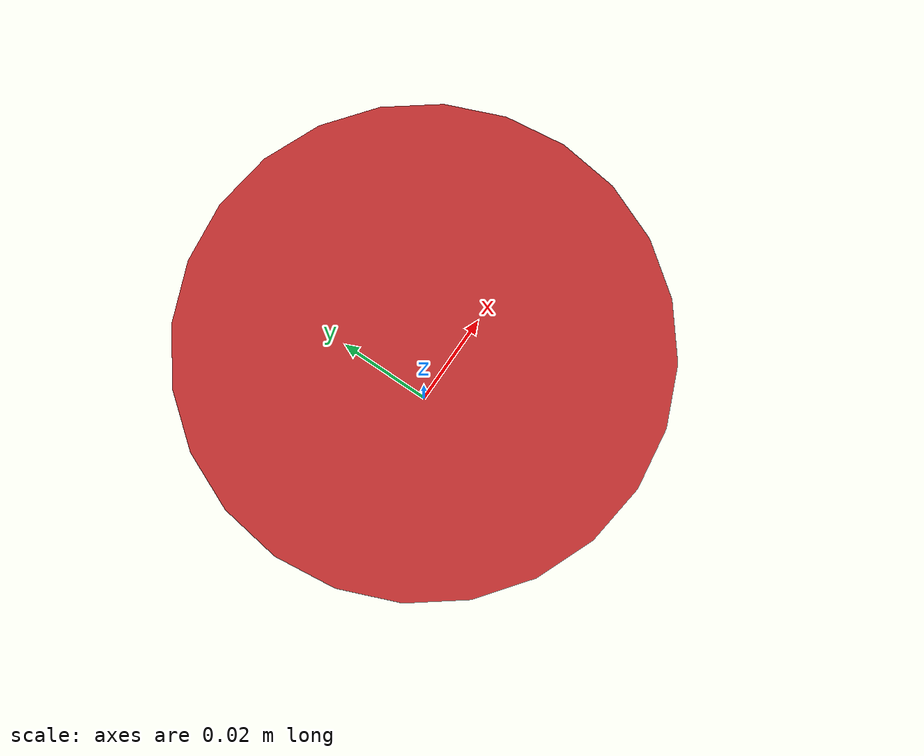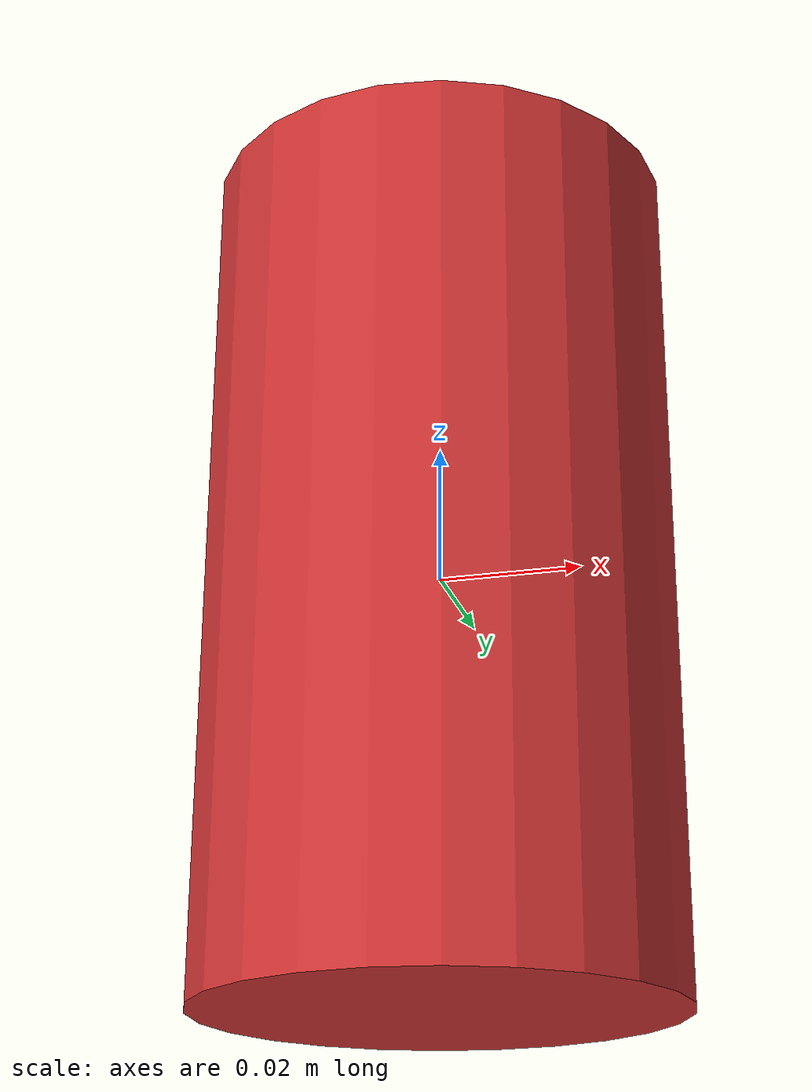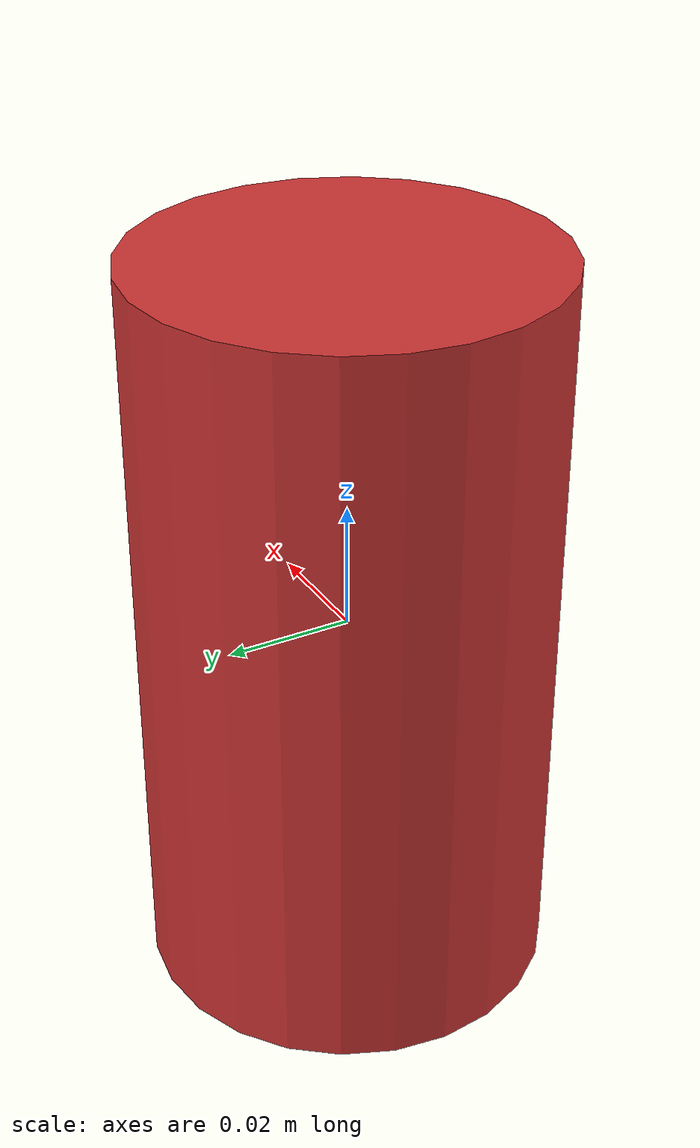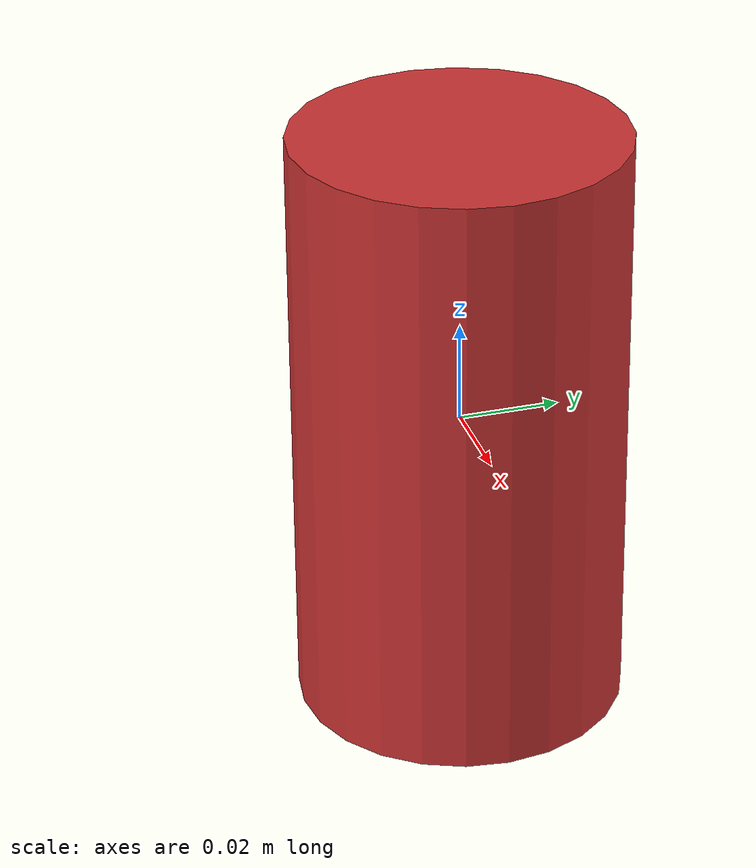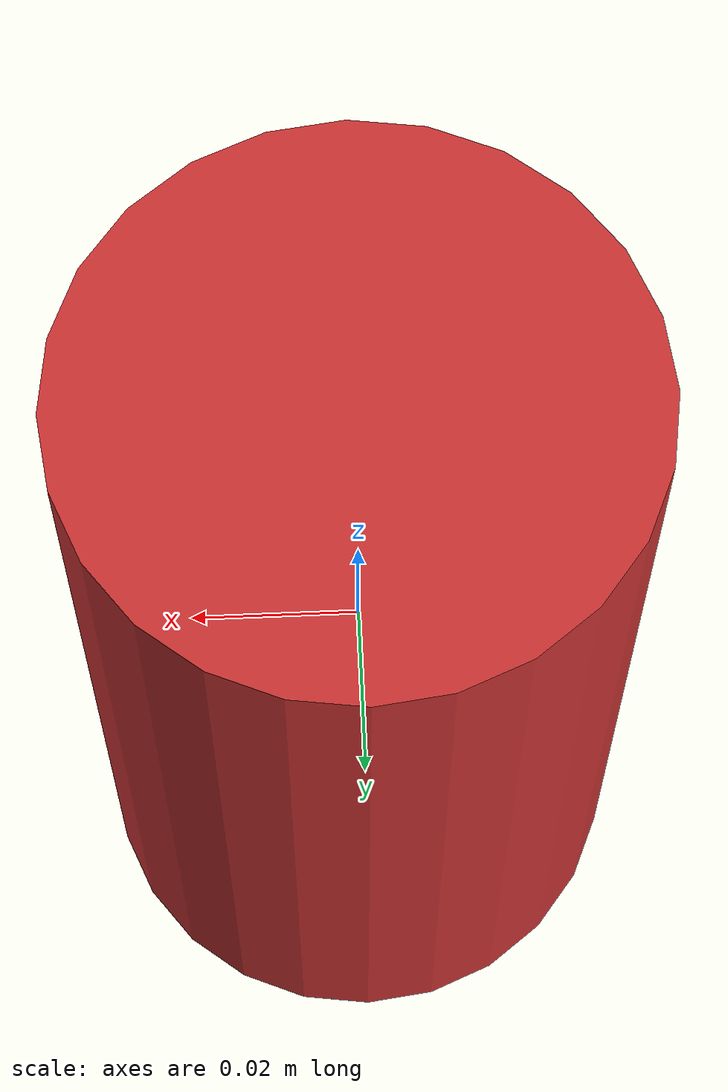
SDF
<?xml version="1.0"?>
<sdf version="1.6">
  <model name="coke_can">
    <static>false</static>
    <link name="link">
      <pose>0 0 0 0 0 0</pose>
      <inertial>
        <mass>0.33</mass>
        <inertia>
          <ixx>0.0001</ixx>
          <iyy>0.0001</iyy>
          <izz>0.0001</izz>
          <ixy>0</ixy>
          <ixz>0</ixz>
          <iyz>0</iyz>
        </inertia>
      </inertial>
      <collision name="collision">
        <geometry>
          <cylinder>
            <radius>0.033</radius>
            <length>0.12</length>
          </cylinder>
        </geometry>
        <surface>
          <friction>
            <ode>
              <mu>0.5</mu>
              <mu2>0.5</mu2>
              <fdir1>0 0 0</fdir1>
              <slip1>0</slip1>
              <slip2>0</slip2>
            </ode>
          </friction>
          <bounce>
            <restitution_coefficient>0.1</restitution_coefficient>
            <threshold>0.001</threshold>
          </bounce>
          <contact>
            <ode>
              <kp>1000000</kp>
              <kd>100</kd>
              <min_depth>0.001</min_depth>
              <max_vel>0.1</max_vel>
            </ode>
          </contact>
        </surface>
      </collision>
      <visual name="visual">
        <geometry>
          <cylinder>
            <radius>0.033</radius>
            <length>0.12</length>
          </cylinder>
        </geometry>
        <material>
          <ambient>0.8 0.2 0.2 1</ambient>
          <diffuse>0.8 0.2 0.2 1</diffuse>
          <specular>0.1 0.1 0.1 1</specular>
          <emissive>0 0 0 1</emissive>
        </material>
      </visual>
    </link>
  </model>
</sdf>
